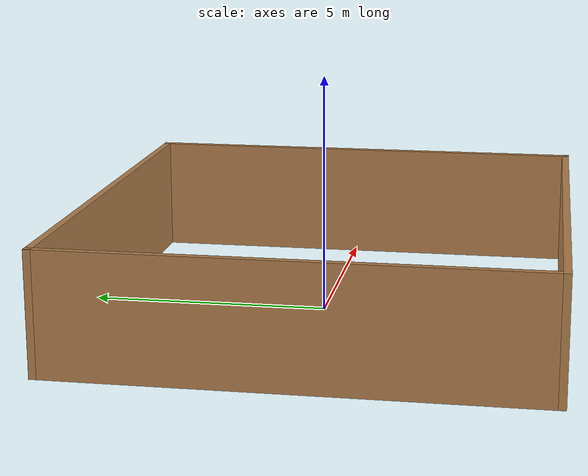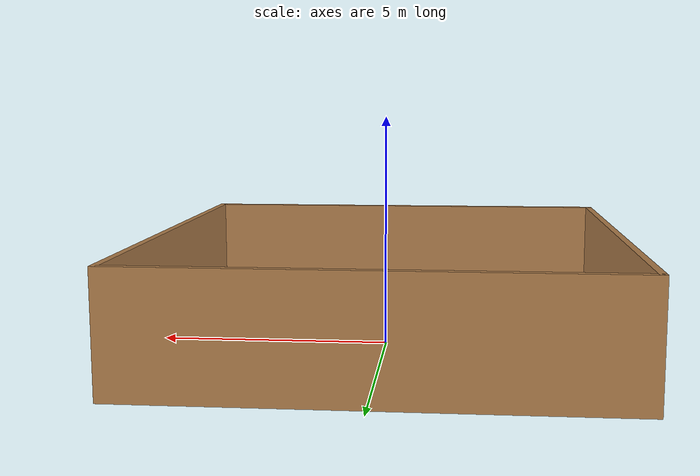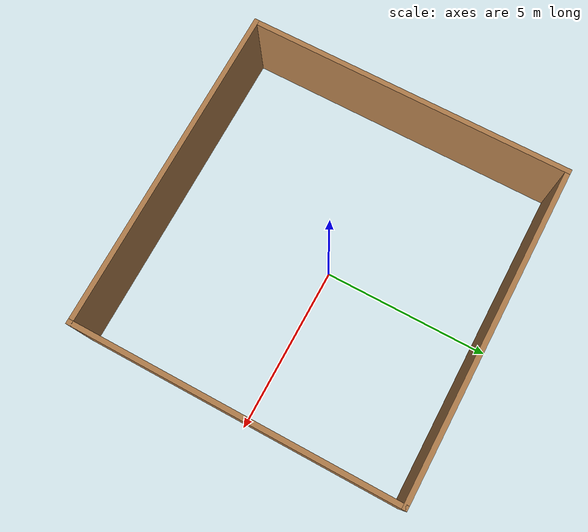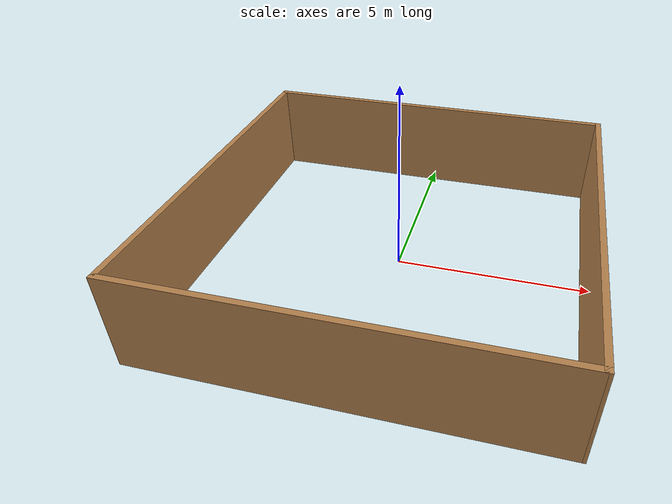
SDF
<?xml version='1.0'?>
<sdf version='1.6'>
  <model name='test_world'>
    <pose frame=''>-0.095 -0.190624 0 0 -0 0</pose>
    <link name='Wall_0'>
      <collision name='Wall_0_Collision'>
        <geometry>
          <box>
            <size>10 0.15 2.5</size>
          </box>
        </geometry>
        <pose frame=''>0 0 1.25 0 -0 0</pose>
      </collision>
      <visual name='Wall_0_Visual'>
        <pose frame=''>0 0 1.25 0 -0 0</pose>
        <geometry>
          <box>
            <size>10 0.15 2.5</size>
          </box>
        </geometry>
        <material>
          <script>
            <uri>file://media/materials/scripts/gazebo.material</uri>
            <name>Gazebo/Wood</name>
          </script>
          <ambient>0.996078 0.47451 0.0196078 1</ambient>
        </material>
        <meta>
          <layer>0</layer>
        </meta>
      </visual>
      <pose frame=''>-0 -4.81456 0 0 -0 0.007143</pose>
    </link>
    <link name='Wall_12'>
      <collision name='Wall_12_Collision'>
        <geometry>
          <box>
            <size>10 0.15 2.5</size>
          </box>
        </geometry>
        <pose frame=''>0 0 1.25 0 -0 0</pose>
      </collision>
      <visual name='Wall_12_Visual'>
        <pose frame=''>0 0 1.25 0 -0 0</pose>
        <geometry>
          <box>
            <size>10 0.15 2.5</size>
          </box>
        </geometry>
        <material>
          <script>
            <uri>file://media/materials/scripts/gazebo.material</uri>
            <name>Gazebo/Wood</name>
          </script>
          <ambient>0.996078 0.47451 0.0196078 1</ambient>
        </material>
        <meta>
          <layer>0</layer>
        </meta>
      </visual>
      <pose frame=''>-0 4.85027 0 0 -0 0</pose>
    </link>
    <link name='Wall_13'>
      <collision name='Wall_13_Collision'>
        <geometry>
          <box>
            <size>9.77964 0.15 2.5</size>
          </box>
        </geometry>
        <pose frame=''>0 0 1.25 0 -0 0</pose>
      </collision>
      <visual name='Wall_13_Visual'>
        <pose frame=''>0 0 1.25 0 -0 0</pose>
        <geometry>
          <box>
            <size>9.77964 0.15 2.5</size>
          </box>
        </geometry>
        <material>
          <script>
            <uri>file://media/materials/scripts/gazebo.material</uri>
            <name>Gazebo/Wood</name>
          </script>
          <ambient>0.996078 0.47451 0.0196078 1</ambient>
        </material>
        <meta>
          <layer>0</layer>
        </meta>
      </visual>
      <pose frame=''>4.925 0.035445 0 0 -0 -1.5708</pose>
    </link>
    <link name='Wall_15'>
      <collision name='Wall_15_Collision'>
        <geometry>
          <box>
            <size>9.75 0.15 2.5</size>
          </box>
        </geometry>
        <pose frame=''>0 0 1.25 0 -0 0</pose>
      </collision>
      <visual name='Wall_15_Visual'>
        <pose frame=''>0 0 1.25 0 -0 0</pose>
        <geometry>
          <box>
            <size>9.75 0.15 2.5</size>
          </box>
        </geometry>
        <material>
          <script>
            <uri>file://media/materials/scripts/gazebo.material</uri>
            <name>Gazebo/Wood</name>
          </script>
          <ambient>1 1 1 1</ambient>
        </material>
        <meta>
          <layer>0</layer>
        </meta>
      </visual>
      <pose frame=''>-4.925 0.050266 0 0 -0 -1.5708</pose>
    </link>
    <static>1</static>
  </model>
</sdf>
